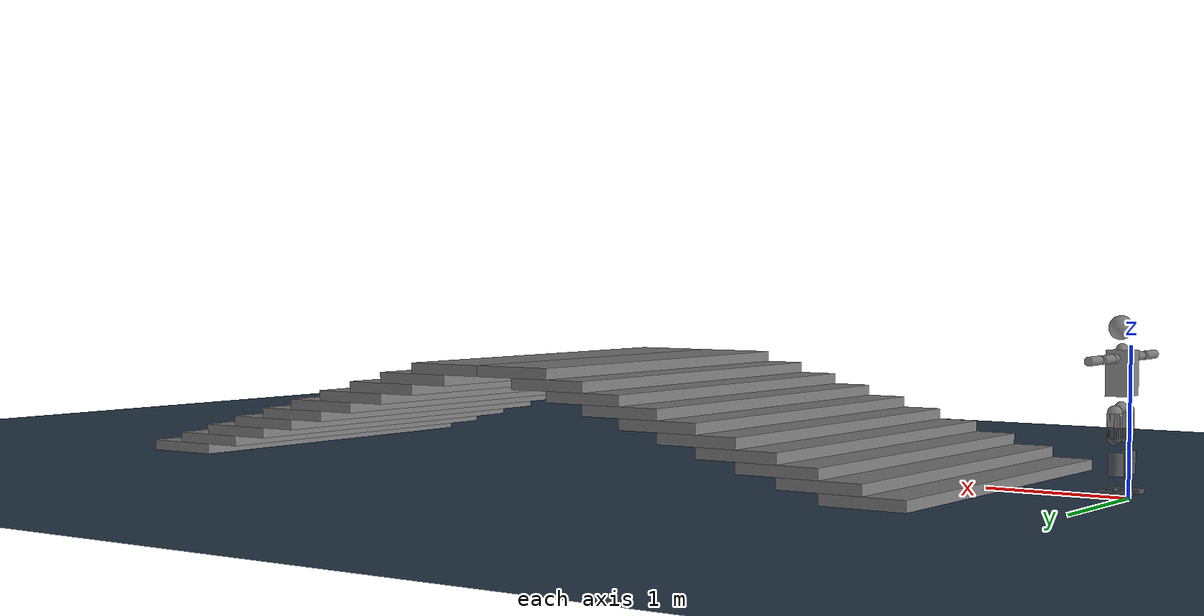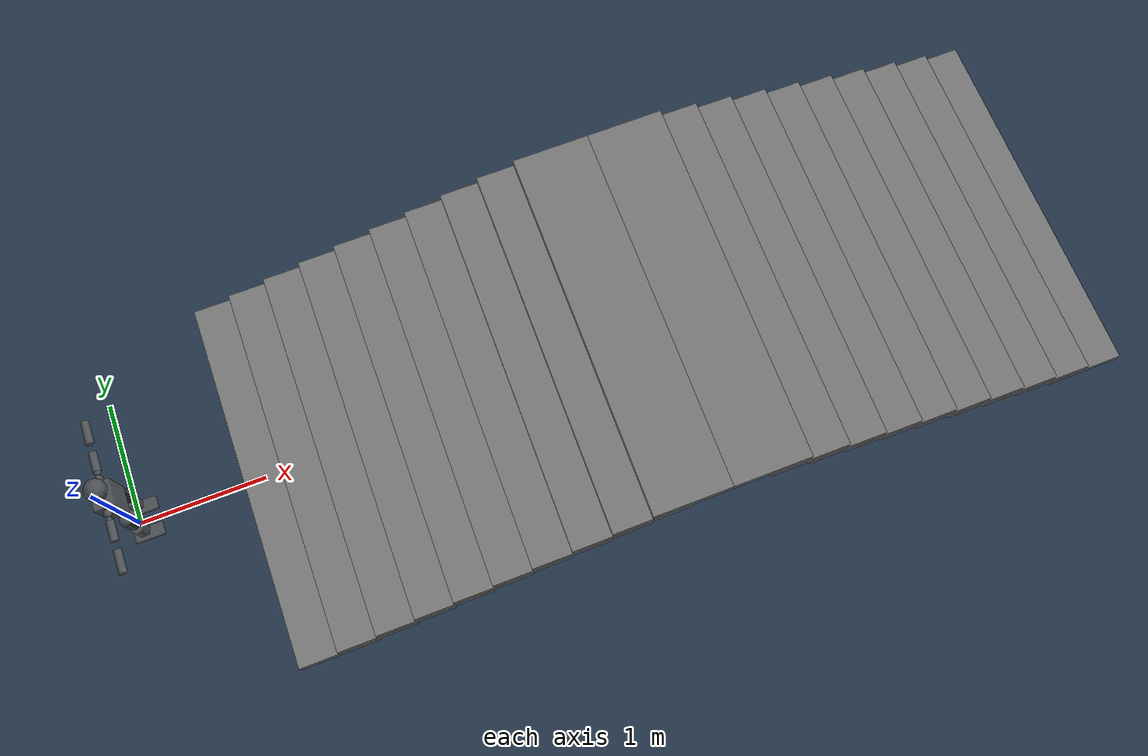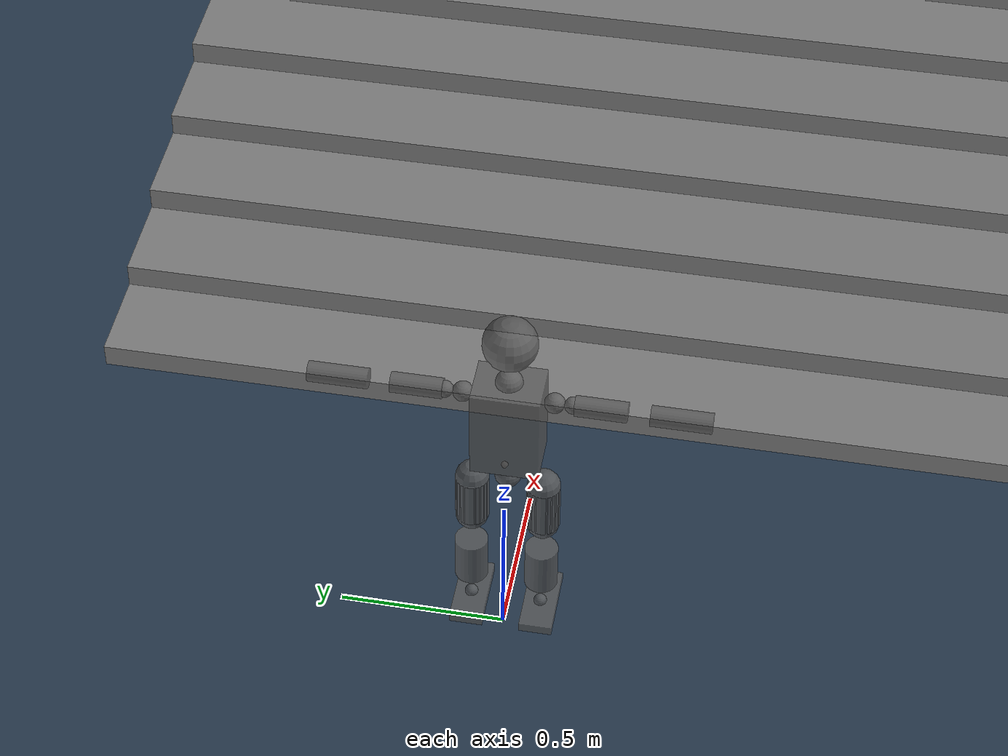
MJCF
<mujoco model="T1">
  <compiler angle="radian" meshdir="meshes"/>

  <default>
    <joint limited="true" damping="0." armature="0.001" frictionloss="0.0" />

    <default class="visual">
      <geom type="mesh" contype="0" conaffinity="0" group="2" density="0"/>
    </default>
      <default class="collision">
        <geom group="3" material="transparent" priority="1" friction="1. 0.01 0.005"/>
    </default>
  </default>

  <asset>
    <texture name="texplane" type="2d" builtin="checker" rgb1=".2 .3 .4" rgb2=".1 0.15 0.2" width="512" height="512" mark="cross" markrgb=".8 .8 .8" />
    <material name="matplane" reflectance="0.3" texture="texplane" texrepeat="1 1" texuniform="true" />
    <material name="metal" rgba=".9 .95 .95 1"/>
    <material name="black" rgba="0 0 0 1"/>
    <material name="white" rgba="1 1 1 1"/>
    <material name="gray" rgba="0.4 0.4 0.4 1"/>
    <material name="transparent" rgba="0.5 0.5 0.5 1"/>
    <mesh name="Trunk" file="Trunk.STL"/>
    <mesh name="H1" file="H1.STL"/>
    <mesh name="H2" file="H2.STL"/>
    <mesh name="AL1" file="AL1.STL"/>
    <mesh name="AL2" file="AL2.STL"/>
    <mesh name="AL3" file="AL3.STL"/>
    <mesh name="left_hand_link" file="left_hand_link.STL"/>
    <mesh name="AR1" file="AR1.STL"/>
    <mesh name="AR2" file="AR2.STL"/>
    <mesh name="AR3" file="AR3.STL"/>
    <mesh name="right_hand_link" file="right_hand_link.STL"/>
    <mesh name="Waist" file="Waist.STL"/>
    <mesh name="Hip_Pitch_Left" file="Hip_Pitch_Left.STL"/>
    <mesh name="Hip_Roll_Left" file="Hip_Roll_Left.STL"/>
    <mesh name="Hip_Yaw_Left" file="Hip_Yaw_Left.STL"/>
    <mesh name="Shank_Left" file="Shank_Left.STL"/>
    <mesh name="Ankle_Cross_Left" file="Ankle_Cross_Left.STL"/>
    <mesh name="left_foot_link" file="left_foot_link.STL"/>
    <mesh name="Hip_Pitch_Right" file="Hip_Pitch_Right.STL"/>
    <mesh name="Hip_Roll_Right" file="Hip_Roll_Right.STL"/>
    <mesh name="Hip_Yaw_Right" file="Hip_Yaw_Right.STL"/>
    <mesh name="Shank_Right" file="Shank_Right.STL"/>
    <mesh name="Ankle_Cross_Right" file="Ankle_Cross_Right.STL"/>
    <mesh name="right_foot_link" file="right_foot_link.STL"/>
  </asset>

  <worldbody>
    <body name="Trunk" pos="0 0 0.7">
    <geom type="box" size="0.075 0.1 0.15" pos="0.06 0 0.12" rgba="0.4 0.4 0.4 0.8" />
    <site name="imu_site" pos="0 0 0" size="0.01"/>

      <camera name="trunk_camera" pos="0.16 0 0.07" quat="0.68458376  0.1770454  -0.1770454  -0.68458376" fovy="63"/>

    <body name="H1" pos="0.0625 0 0.243">
      <inertial pos="-0.000508 -0.001403 0.057432" quat="0.763881 -0.0132172 0.00173419 0.645219" mass="0.44391" diaginertia="0.000241549 0.00022351 0.000149941"/>
      <joint name="AAHead_yaw" pos="0 0 0" axis="0 0 1" range="-1.57 1.57" actuatorfrcrange="-7 7"/>
      <geom type="sphere" size="0.04" pos="0 0 0.03" rgba="0.4 0.4 0.4 0.8" />
      <body name="H2" pos="0 0 0.06185">
        <inertial pos="0.007802 0.001262 0.098631" quat="0.988453 0.106172 -0.0745686 -0.0782786" mass="0.631019" diaginertia="0.00203553 0.00192467 0.00172381"/>
        <joint name="Head_pitch" pos="0 0 0" axis="0 1 0" range="-0.35 1.22" actuatorfrcrange="-7 7"/>
        <geom type="sphere" size="0.08" pos="0.01 0 0.11" rgba="0.4 0.4 0.4 0.8" name="head"/>

        <camera name="head_camera" mode="fixed" pos="0.07 0 0.09" quat="0.5 0.5 -0.5 -0.5" fovy="58.3"/>

      </body>
    </body>
    <body name="AL1" pos="0.0575 0.1063 0.219" quat="1 0 0.000440565 0">
      <inertial pos="-0.000677 0.044974 0" quat="0.50423 0.495734 -0.50423 0.495734" mass="0.53" diaginertia="0.001367 0.00129329 0.000292711"/>
      <joint name="Left_Shoulder_Pitch" pos="0 0 0" axis="0 1 0" range="-3.31 1.22" actuatorfrcrange="-18 18"/>
      <geom type="sphere" size="0.03" pos="0 0.025 0" rgba="0.4 0.4 0.4 0.8" />
      <body name="AL2" pos="0 0.047 0">
        <inertial pos="0.003862 0.037976 0" quat="0.487991 0.511727 -0.487991 0.511727" mass="0.16" diaginertia="0.000401 0.00034538 0.00017662"/>
        <joint name="Left_Shoulder_Roll" pos="0 0 0" axis="1 0 0" range="-1.74 1.57" actuatorfrcrange="-18 18"/>
        <geom type="sphere" size="0.025" pos="0 0.03 0" rgba="0.4 0.4 0.4 0.8" />
        <body name="AL3" pos="0.00025 0.0605 0">
          <inertial pos="0 0.085353 -9.9e-05" quat="0.70641 0.707803 0 0" mass="1.02" diaginertia="0.012869 0.012798 0.000620953"/>
          <joint name="Left_Elbow_Pitch" pos="0 0 0" axis="0 1 0" range="-2.27 2.27" actuatorfrcrange="-18 18"/>
          <geom type="cylinder" size="0.03 0.075" pos="0 0.05 0" quat="0.707105 0.707108 0 0" rgba="0.4 0.4 0.4 0.8" name="left_forearm"/>
          <body name="left_hand_link" pos="0 0.1471 0">
            <inertial pos="-0.000108 0.109573 0.000591" quat="0.707866 0.706347 -5.22939e-05 -0.000214913" mass="0.327214" diaginertia="0.008159 0.00813104 0.000214962"/>
            <joint name="Left_Elbow_Yaw" pos="0 0 0" axis="0 0 1" range="-2.44 0" actuatorfrcrange="-18 18"/>
            <geom type="cylinder" size="0.03 0.0875" pos="0 0.13 0" quat="0.707105 0.707108 0 0" rgba="0.4 0.4 0.4 0.8" name="left_hand"/>
          </body>
        </body>
      </body>
    </body>
    <body name="AR1" pos="0.0575 -0.1063 0.219" quat="1 0 0.000440565 0">
      <inertial pos="-0.000677 -0.044974 0" quat="0.50423 0.495734 -0.50423 0.495734" mass="0.53" diaginertia="0.001367 0.00129329 0.000292711"/>
      <joint name="Right_Shoulder_Pitch" pos="0 0 0" axis="0 1 0" range="-3.31 1.22" actuatorfrcrange="-18 18"/>
      <geom type="sphere" size="0.03" pos="0 -0.025 0" rgba="0.4 0.4 0.4 0.8" />
      <body name="AR2" pos="0 -0.047 0">
        <inertial pos="0.003862 -0.037976 0" quat="0.511727 0.487991 -0.511727 0.487991" mass="0.16" diaginertia="0.000401 0.00034538 0.00017662"/>
        <joint name="Right_Shoulder_Roll" pos="0 0 0" axis="1 0 0" range="-1.57 1.74" actuatorfrcrange="-18 18"/>
        <geom type="sphere" size="0.025" pos="0 -0.03 0" rgba="0.4 0.4 0.4 0.8" />
        <body name="AR3" pos="0.00025 -0.0605 0">
          <inertial pos="0 -0.085353 -9.9e-05" quat="0.707803 0.70641 0 0" mass="1.02" diaginertia="0.012869 0.012798 0.000620953"/>
          <joint name="Right_Elbow_Pitch" pos="0 0 0" axis="0 1 0" range="-2.27 2.27" actuatorfrcrange="-18 18"/>
          <geom type="cylinder" size="0.03 0.075" pos="0 -0.05 0" quat="0.707105 0.707108 0 0" rgba="0.4 0.4 0.4 0.8" name="right_forearm"/>
          <body name="right_hand_link" pos="0 -0.1471 0">
            <inertial pos="-0.000108 -0.109573 0.000591" quat="0.706347 0.707866 0.000214913 5.22939e-05" mass="0.327214" diaginertia="0.008159 0.00813104 0.000214962"/>
            <joint name="Right_Elbow_Yaw" pos="0 0 0" axis="0 0 1" range="0 2.44" actuatorfrcrange="-18 18"/>
            <geom type="cylinder" size="0.03 0.0875" pos="0 -0.13 0" quat="0.707105 0.707108 0 0" rgba="0.4 0.4 0.4 0.8" name="right_hand"/>
          </body>
        </body>
      </body>
    </body>
    <body name="Waist" pos="0.0625 0 -0.1155">
      <inertial pos="0.002284 3e-06 0.007301" quat="0.983649 0.000360386 -0.180076 0.00269791" mass="2.581" diaginertia="0.00536742 0.005299 0.00474258"/>
      <joint name="Waist" pos="0 0 0" axis="0 0 1" range="-1.57 1.57" actuatorfrcrange="-30 30"/>
      <geom type="sphere" size="0.04" pos="0 0 0.01" rgba="0.4 0.4 0.4 0.8" />
      <body name="Hip_Pitch_Left" pos="0 0.106 0">
        <inertial pos="0.000534 -0.007296 -0.018083" quat="0.975141 0.2211 0.0145808 0.0017406" mass="1.021" diaginertia="0.00180547 0.00145926 0.00125327"/>
        <joint name="Left_Hip_Pitch" pos="0 0 0" axis="0 1 0" range="-1.8 1.57" actuatorfrcrange="-45 45"/>
        <geom type="sphere" size="0.03" pos="0 0 -0.01" rgba="0.4 0.4 0.4 0.8" />
        <body name="Hip_Roll_Left" pos="0 0 -0.02">
          <inertial pos="0.001101 2.4e-05 -0.05375" quat="0.707081 -0.00599604 -0.00599604 0.707081" mass="0.385" diaginertia="0.001743 0.00151729 0.000514712"/>
          <joint name="Left_Hip_Roll" pos="0 0 0" axis="1 0 0" range="-0.2 1.57" actuatorfrcrange="-30 30"/>
          <geom type="capsule" size="0.05 0.08" pos="0 0 -0.08" rgba="0.4 0.4 0.4 0.8" name="left_thigh"/>
          <body name="Hip_Yaw_Left" pos="0 0 -0.081854">
            <inertial pos="-0.007233 0.000206 -0.089184" quat="0.696808 -0.033953 -0.0315708 0.715758" mass="2.166" diaginertia="0.0257334 0.0253024 0.00259215"/>
            <joint name="Left_Hip_Yaw" pos="0 0 0" axis="0 0 1" range="-1 1" actuatorfrcrange="-30 30"/>
            <geom type="cylinder" size="0.05 0.08" pos="0 0 0" rgba="0.4 0.4 0.4 0.8" />
            <body name="Shank_Left" pos="-0.014 0 -0.134">
              <inertial pos="-0.006012 0.000259 -0.124318" quat="0.997573 0.00144024 -0.023949 0.0653706" mass="1.73" diaginertia="0.0346951 0.0345375 0.00185844"/>
              <joint name="Left_Knee_Pitch" pos="0 0 0" axis="0 1 0" range="0 2.34" actuatorfrcrange="-60 60"/>
              <geom type="cylinder" size="0.05 0.075" pos="0 0 -0.12" rgba="0.4 0.4 0.4 0.8" name="left_calf"/>
              <body name="Ankle_Cross_Left" pos="0 0 -0.28">
                <inertial pos="-0.003722 0 -0.007981" quat="0.443136 0.551027 0.551027 0.443136" mass="0.073" diaginertia="2.9e-05 2.56589e-05 1.13411e-05"/>
                <joint name="Left_Ankle_Pitch" pos="0 0 0" axis="0 1 0" range="-0.87 0.35" actuatorfrcrange="-20 20"/>
                <geom type="sphere" size="0.02" pos="0 0 -0.008" rgba="0.4 0.4 0.4 0.8" />
                <body name="left_foot_link" pos="0 0.00025 -0.012">
                  <inertial pos="-0.000249 0 -0.00914" quat="0 0.679927 0 0.733279" mass="0.685" diaginertia="0.00268212 0.002385 0.000726885"/>
                  <joint name="Left_Ankle_Roll" pos="0 0 0" axis="1 0 0" range="-0.44 0.44" actuatorfrcrange="-15 15"/>
                  <geom type="box" size="0.1115 0.05 0.015" pos="0.01 0 -0.015" rgba="0.4 0.4 0.4 0.8" name="left_foot"/>
                </body>
              </body>
            </body>
          </body>
        </body>
      </body>
      <body name="Hip_Pitch_Right" pos="0 -0.106 0">
        <inertial pos="0.000534 0.007514 -0.018082" quat="0.973446 -0.228403 0.0147148 -0.00419349" mass="1.021" diaginertia="0.00180552 0.0014632 0.00124928"/>
        <joint name="Right_Hip_Pitch" pos="0 0 0" axis="0 1 0" range="-1.8 1.57" actuatorfrcrange="-45 45"/>
        <geom type="sphere" size="0.03" pos="0 0 -0.01" rgba="0.4 0.4 0.4 0.8" />
        <body name="Hip_Roll_Right" pos="0 0 -0.02">
          <inertial pos="0.001099 2.4e-05 -0.053748" quat="0.707081 -0.00599604 -0.00599604 0.707081" mass="0.385" diaginertia="0.001743 0.00151729 0.000514712"/>
          <joint name="Right_Hip_Roll" pos="0 0 0" axis="1 0 0" range="-1.57 0.2" actuatorfrcrange="-30 30"/>
          <geom type="capsule" size="0.05 0.08" pos="0 0 -0.08" rgba="0.4 0.4 0.4 0.8" name="right_thigh"/>
          <body name="Hip_Yaw_Right" pos="0 0 -0.081854">
            <inertial pos="-0.007191 -0.000149 -0.08922" quat="0.714468 -0.0315638 -0.0336391 0.698146" mass="2.17" diaginertia="0.0257623 0.0253298 0.00259389"/>
            <joint name="Right_Hip_Yaw" pos="0 0 0" axis="0 0 1" range="-1 1" actuatorfrcrange="-30 30"/>
            <geom type="cylinder" size="0.05 0.08" pos="0 0 0" rgba="0.4 0.4 0.4 0.8" />
            <body name="Shank_Right" pos="-0.014 0 -0.134">
              <inertial pos="-0.005741 -0.000541 -0.122602" quat="0.99926 -0.000580963 -0.023461 -0.0304754" mass="1.79" diaginertia="0.0351717 0.0349574 0.00196589"/>
              <joint name="Right_Knee_Pitch" pos="0 0 0" axis="0 1 0" range="0 2.34" actuatorfrcrange="-60 60"/>
              <geom type="cylinder" size="0.05 0.075" pos="0 0 -0.12" rgba="0.4 0.4 0.4 0.8" name="right_calf"/>
              <body name="Ankle_Cross_Right" pos="0 0 -0.28">
                <inertial pos="-0.003722 0 -0.007981" quat="0.443136 0.551027 0.551027 0.443136" mass="0.073" diaginertia="2.9e-05 2.56589e-05 1.13411e-05"/>
                <joint name="Right_Ankle_Pitch" pos="0 0 0" axis="0 1 0" range="-0.87 0.35" actuatorfrcrange="-20 20"/>
                <geom type="sphere" size="0.02" pos="0 0 -0.008" rgba="0.4 0.4 0.4 0.8" />
                <body name="right_foot_link" pos="0 -0.00025 -0.012">
                  <inertial pos="-0.000248 0 -0.00914" quat="0 0.679927 0 0.733279" mass="0.685" diaginertia="0.00268212 0.002385 0.000726885"/>
                  <joint name="Right_Ankle_Roll" pos="0 0 0" axis="1 0 0" range="-0.44 0.44" actuatorfrcrange="-15 15"/>
                  <geom type="box" size="0.1115 0.05 0.015" pos="0.01 0 -0.015" rgba="0.4 0.4 0.4 0.8" name="right_foot"/>
                </body>
              </body>
            </body>
          </body>
        </body>
      </body>
    </body>
    </body>
  </worldbody>

  <contact>
    <pair geom1="left_foot" geom2="ground" />
    <pair geom1="right_foot" geom2="ground" />
    <pair geom1="left_thigh" geom2="ground" />
    <pair geom1="right_thigh" geom2="ground" />
    <pair geom1="left_hand" geom2="ground" />
    <pair geom1="right_hand" geom2="ground" />
    <pair geom1="head" geom2="ground" />

    <pair geom1="left_foot" geom2="right_foot" />
    <pair geom1="left_foot" geom2="right_calf" />
    <pair geom1="right_foot" geom2="left_calf" />
    <pair geom1="left_calf" geom2="right_calf" />
    <pair geom1="left_thigh" geom2="right_thigh" />
    <pair geom1="left_thigh" geom2="right_calf" />
    <pair geom1="left_calf" geom2="right_thigh" />

    <pair geom1="left_hand" geom2="head" />
    <pair geom1="right_hand" geom2="head" />
  </contact>

  <worldbody>
        <light directional="true" diffuse=".4 .4 .4" specular="0.1 0.1 0.1" pos="0 0 5.0" dir="0 0 -1" castshadow="false" />
    <light directional="true" diffuse=".6 .6 .6" specular="0.2 0.2 0.2" pos="0 0 4" dir="0 0 -1" />

    <!-- Ground plane -->
    <geom name="ground" pos="0 0 0" size="100 100 1" type="plane" material="matplane" margin="0.001" contype="1" conaffinity="15" friction="0.7 0.005 0.0001" />

    <!-- Staircase -->

    <!-- Staircase - Up-->
    <body name="stair_up" pos="1. 0 0">
      <geom name="step_up0" type="box" size="0.31 1.5 0.04" pos="0.155 0 0.04" rgba="0.5 0.5 0.5 1" contype="1" conaffinity="3"/>
      <geom name="step_up1" type="box" size="0.31 1.5 0.04" pos="0.465 0 0.12" rgba="0.5 0.5 0.5 1" contype="1" conaffinity="3"/>
      <geom name="step_up2" type="box" size="0.31 1.5 0.04" pos="0.775 0 0.20" rgba="0.5 0.5 0.5 1" contype="1" conaffinity="3"/>
      <geom name="step_up3" type="box" size="0.31 1.5 0.04" pos="1.085 0 0.28" rgba="0.5 0.5 0.5 1" contype="1" conaffinity="3"/>
      <geom name="step_up4" type="box" size="0.31 1.5 0.04" pos="1.395 0 0.36" rgba="0.5 0.5 0.5 1" contype="1" conaffinity="3"/>
      <geom name="step_up5" type="box" size="0.31 1.5 0.04" pos="1.705 0 0.44" rgba="0.5 0.5 0.5 1" contype="1" conaffinity="3"/>
      <geom name="step_up6" type="box" size="0.31 1.5 0.04" pos="2.015 0 0.52" rgba="0.5 0.5 0.5 1" contype="1" conaffinity="3"/>
      <geom name="step_up7" type="box" size="0.31 1.5 0.04" pos="2.325 0 0.60" rgba="0.5 0.5 0.5 1" contype="1" conaffinity="3"/>
      <geom name="step_up8" type="box" size="0.31 1.5 0.04" pos="2.635 0 0.68" rgba="0.5 0.5 0.5 1" contype="1" conaffinity="3"/>
      <geom name="step_up9" type="box" size="0.31 1.5 0.04" pos="2.945 0 0.76" rgba="0.5 0.5 0.5 1" contype="1" conaffinity="3"/>
    </body>

      <!-- Staircase - Down -->
    <body name="stair_down" pos="4.565 0 0">
      <geom name="step_down0" type="box" size="0.31 1.5 0.04" pos="0 0 0.76" rgba="0.5 0.5 0.5 1" contype="1" conaffinity="3"/>
      <geom name="step_down1" type="box" size="0.31 1.5 0.04" pos="0.31 0 0.68" rgba="0.5 0.5 0.5 1" contype="1" conaffinity="3"/>
      <geom name="step_down2" type="box" size="0.31 1.5 0.04" pos="0.62 0 0.60" rgba="0.5 0.5 0.5 1" contype="1" conaffinity="3"/>
      <geom name="step_down3" type="box" size="0.31 1.5 0.04" pos="0.93 0 0.52" rgba="0.5 0.5 0.5 1" contype="1" conaffinity="3"/>
      <geom name="step_down4" type="box" size="0.31 1.5 0.04" pos="1.24 0 0.44" rgba="0.5 0.5 0.5 1" contype="1" conaffinity="3"/>
      <geom name="step_down5" type="box" size="0.31 1.5 0.04" pos="1.55 0 0.36" rgba="0.5 0.5 0.5 1" contype="1" conaffinity="3"/>
      <geom name="step_down6" type="box" size="0.31 1.5 0.04" pos="1.86 0 0.28" rgba="0.5 0.5 0.5 1" contype="1" conaffinity="3"/>
      <geom name="step_down7" type="box" size="0.31 1.5 0.04" pos="2.17 0 0.20" rgba="0.5 0.5 0.5 1" contype="1" conaffinity="3"/>
      <geom name="step_down8" type="box" size="0.31 1.5 0.04" pos="2.48 0 0.12" rgba="0.5 0.5 0.5 1" contype="1" conaffinity="3"/>
      <geom name="step_down9" type="box" size="0.31 1.5 0.04" pos="2.79 0 0.04" rgba="0.5 0.5 0.5 1" contype="1" conaffinity="3"/>
    </body>

  </worldbody>

  <actuator>
    <!-- Torque actuators (motor) -->
    <motor name="AAHead_yaw" joint="AAHead_yaw" ctrllimited="true" ctrlrange="-7 7" gear="1" />
    <motor name="Head_pitch" joint="Head_pitch" ctrllimited="true" ctrlrange="-7 7" gear="1" />
    <motor name="Left_Shoulder_Pitch" joint="Left_Shoulder_Pitch" ctrllimited="true" ctrlrange="-18 18" gear="1" />
    <motor name="Left_Shoulder_Roll" joint="Left_Shoulder_Roll" ctrllimited="true" ctrlrange="-18 18" gear="1" />
    <motor name="Left_Elbow_Pitch" joint="Left_Elbow_Pitch" ctrllimited="true" ctrlrange="-18 18" gear="1" />
    <motor name="Left_Elbow_Yaw" joint="Left_Elbow_Yaw" ctrllimited="true" ctrlrange="-18 18" gear="1" />
    <motor name="Right_Shoulder_Pitch" joint="Right_Shoulder_Pitch" ctrllimited="true" ctrlrange="-18 18" gear="1" />
    <motor name="Right_Shoulder_Roll" joint="Right_Shoulder_Roll" ctrllimited="true" ctrlrange="-18 18" gear="1" />
    <motor name="Right_Elbow_Pitch" joint="Right_Elbow_Pitch" ctrllimited="true" ctrlrange="-18 18" gear="1" />
    <motor name="Right_Elbow_Yaw" joint="Right_Elbow_Yaw" ctrllimited="true" ctrlrange="-18 18" gear="1" />
    <motor name="Waist" joint="Waist" ctrllimited="true" ctrlrange="-30 30" gear="1" />
    <motor name="Left_Hip_Pitch" joint="Left_Hip_Pitch" ctrllimited="true" ctrlrange="-45 45" gear="1" />
    <motor name="Left_Hip_Roll" joint="Left_Hip_Roll" ctrllimited="true" ctrlrange="-30 30" gear="1" />
    <motor name="Left_Hip_Yaw" joint="Left_Hip_Yaw" ctrllimited="true" ctrlrange="-30 30" gear="1" />
    <motor name="Left_Knee_Pitch" joint="Left_Knee_Pitch" ctrllimited="true" ctrlrange="-60 60" gear="1" />
    <motor name="Left_Ankle_Pitch" joint="Left_Ankle_Pitch" ctrllimited="true" ctrlrange="-20 20" gear="1" />
    <motor name="Left_Ankle_Roll" joint="Left_Ankle_Roll" ctrllimited="true" ctrlrange="-15 15" gear="1" />
    <motor name="Right_Hip_Pitch" joint="Right_Hip_Pitch" ctrllimited="true" ctrlrange="-45 45" gear="1" />
    <motor name="Right_Hip_Roll" joint="Right_Hip_Roll" ctrllimited="true" ctrlrange="-30 30" gear="1" />
    <motor name="Right_Hip_Yaw" joint="Right_Hip_Yaw" ctrllimited="true" ctrlrange="-30 30" gear="1" />
    <motor name="Right_Knee_Pitch" joint="Right_Knee_Pitch" ctrllimited="true" ctrlrange="-60 60" gear="1" />
    <motor name="Right_Ankle_Pitch" joint="Right_Ankle_Pitch" ctrllimited="true" ctrlrange="-20 20" gear="1" />
    <motor name="Right_Ankle_Roll" joint="Right_Ankle_Roll" ctrllimited="true" ctrlrange="-15 15" gear="1" />
  </actuator>

  <sensor>
    <!-- Joint position sensors -->
    <jointpos name="AAHead_yaw_pos" joint="AAHead_yaw"/>
    <jointpos name="Head_pitch_pos" joint="Head_pitch"/>
    <jointpos name="Left_Shoulder_Pitch_pos" joint="Left_Shoulder_Pitch"/>
    <jointpos name="Left_Shoulder_Roll_pos" joint="Left_Shoulder_Roll"/>
    <jointpos name="Left_Elbow_Pitch_pos" joint="Left_Elbow_Pitch"/>
    <jointpos name="Left_Elbow_Yaw_pos" joint="Left_Elbow_Yaw"/>
    <jointpos name="Right_Shoulder_Pitch_pos" joint="Right_Shoulder_Pitch"/>
    <jointpos name="Right_Shoulder_Roll_pos" joint="Right_Shoulder_Roll"/>
    <jointpos name="Right_Elbow_Pitch_pos" joint="Right_Elbow_Pitch"/>
    <jointpos name="Right_Elbow_Yaw_pos" joint="Right_Elbow_Yaw"/>
    <jointpos name="Waist_pos" joint="Waist"/>
    <jointpos name="Left_Hip_Pitch_pos" joint="Left_Hip_Pitch"/>
    <jointpos name="Left_Hip_Roll_pos" joint="Left_Hip_Roll"/>
    <jointpos name="Left_Hip_Yaw_pos" joint="Left_Hip_Yaw"/>
    <jointpos name="Left_Knee_Pitch_pos" joint="Left_Knee_Pitch"/>
    <jointpos name="Left_Ankle_Pitch_pos" joint="Left_Ankle_Pitch"/>
    <jointpos name="Left_Ankle_Roll_pos" joint="Left_Ankle_Roll"/>
    <jointpos name="Right_Hip_Pitch_pos" joint="Right_Hip_Pitch"/>
    <jointpos name="Right_Hip_Roll_pos" joint="Right_Hip_Roll"/>
    <jointpos name="Right_Hip_Yaw_pos" joint="Right_Hip_Yaw"/>
    <jointpos name="Right_Knee_Pitch_pos" joint="Right_Knee_Pitch"/>
    <jointpos name="Right_Ankle_Pitch_pos" joint="Right_Ankle_Pitch"/>
    <jointpos name="Right_Ankle_Roll_pos" joint="Right_Ankle_Roll"/>

    <!-- Joint velocity sensors -->
    <jointvel name="AAHead_yaw_vel" joint="AAHead_yaw"/>
    <jointvel name="Head_pitch_vel" joint="Head_pitch"/>
    <jointvel name="Left_Shoulder_Pitch_vel" joint="Left_Shoulder_Pitch"/>
    <jointvel name="Left_Shoulder_Roll_vel" joint="Left_Shoulder_Roll"/>
    <jointvel name="Left_Elbow_Pitch_vel" joint="Left_Elbow_Pitch"/>
    <jointvel name="Left_Elbow_Yaw_vel" joint="Left_Elbow_Yaw"/>
    <jointvel name="Right_Shoulder_Pitch_vel" joint="Right_Shoulder_Pitch"/>
    <jointvel name="Right_Shoulder_Roll_vel" joint="Right_Shoulder_Roll"/>
    <jointvel name="Right_Elbow_Pitch_vel" joint="Right_Elbow_Pitch"/>
    <jointvel name="Right_Elbow_Yaw_vel" joint="Right_Elbow_Yaw"/>
    <jointvel name="Waist_vel" joint="Waist"/>
    <jointvel name="Left_Hip_Pitch_vel" joint="Left_Hip_Pitch"/>
    <jointvel name="Left_Hip_Roll_vel" joint="Left_Hip_Roll"/>
    <jointvel name="Left_Hip_Yaw_vel" joint="Left_Hip_Yaw"/>
    <jointvel name="Left_Knee_Pitch_vel" joint="Left_Knee_Pitch"/>
    <jointvel name="Left_Ankle_Pitch_vel" joint="Left_Ankle_Pitch"/>
    <jointvel name="Left_Ankle_Roll_vel" joint="Left_Ankle_Roll"/>
    <jointvel name="Right_Hip_Pitch_vel" joint="Right_Hip_Pitch"/>
    <jointvel name="Right_Hip_Roll_vel" joint="Right_Hip_Roll"/>
    <jointvel name="Right_Hip_Yaw_vel" joint="Right_Hip_Yaw"/>
    <jointvel name="Right_Knee_Pitch_vel" joint="Right_Knee_Pitch"/>
    <jointvel name="Right_Ankle_Pitch_vel" joint="Right_Ankle_Pitch"/>
    <jointvel name="Right_Ankle_Roll_vel" joint="Right_Ankle_Roll"/>

    <!-- IMU sensors on Trunk body -->
    <framequat name="imu_quat" objtype="site" objname="imu_site"/>
    <gyro name="imu_gyro" site="imu_site"/>
    <accelerometer name="imu_accel" site="imu_site"/>
  </sensor>

</mujoco>
